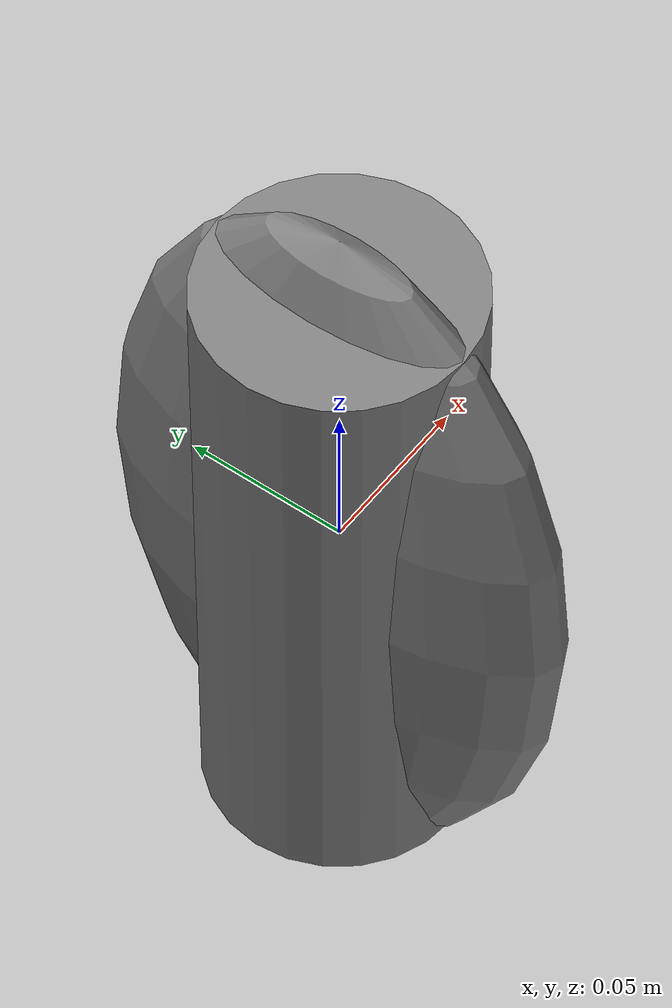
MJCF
<mujoco model="hope_epa_pair">
  <compiler angle="radian"/>
  <option gravity="0 0 0"/>
  <worldbody>
    <geom name="fixed_geom" contype="1" conaffinity="1" margin="0" gap="0" type="ellipsoid" size="0.025 0.075 0.125"/>
    <body name="moving_body">
      <freejoint name="moving_free"/>
      <geom name="moving_geom" contype="1" conaffinity="1" margin="0" gap="0" type="cylinder" size="0.04 0.105" density="1000"/>
    </body>
  </worldbody>
</mujoco>
